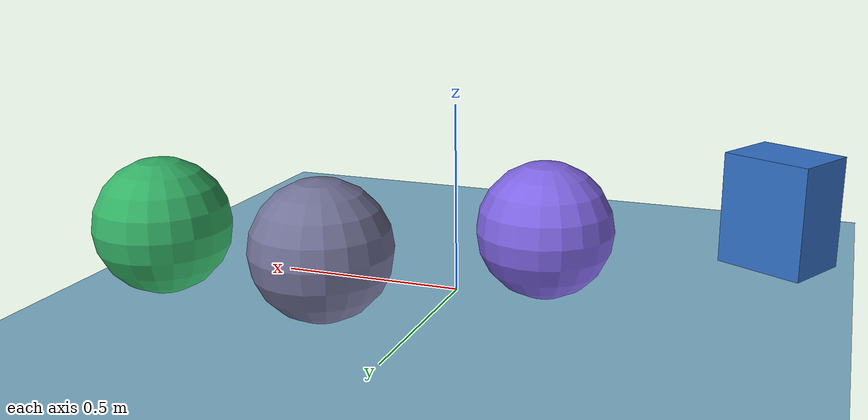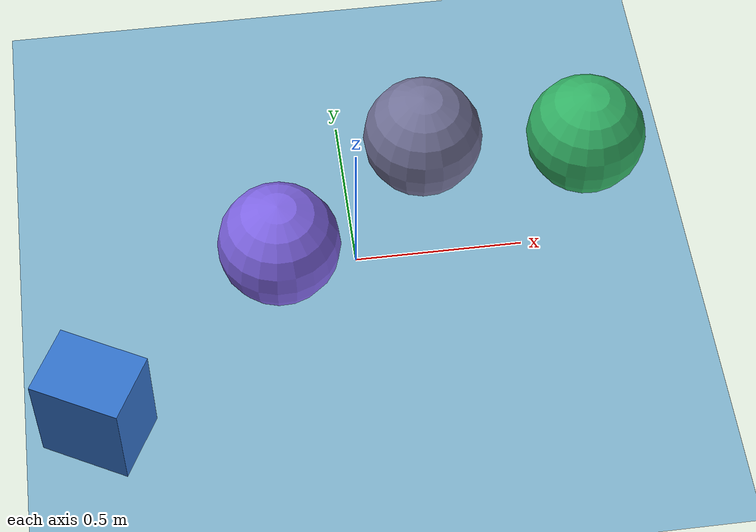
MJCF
<mujoco>
   <asset>
<texture type="skybox" builtin="gradient" rgb1="0.8 0.6 0.1" rgb2="0.8 0.5 0.1" width="500" height="500"/>
<texture name="checker_0" builtin="checker" rgb1="0.3 0.0 0.7" rgb2="0.6 0.9 0.5" width="500" height="500"/>
<texture name="gradient_1" builtin="gradient" rgb1="0.2 0.7 0.9" rgb2="0.8 0.1 0.9" width="500" height="500"/>
<texture name="gradient_2" builtin="gradient" rgb1="0.3 0.5 0.4" rgb2="0.1 0.9 0.4" width="500" height="500"/>
<texture name="gradient_3" builtin="gradient" rgb1="0.2 0.6 0.9" rgb2="0.2 0.3 0.7" width="500" height="500"/><material name="checker_0_mat" reflectance="0.16684049456139194" texrepeat="9 9" texture="checker_0" texuniform="false" />
<material name="gradient_1_mat" reflectance="0.14991018337636397" texture="gradient_1" texuniform="true"/>
<material name="gradient_2_mat" reflectance="0.34138567967675326" texture="gradient_2" texuniform="true"/>
<material name="gradient_3_mat" reflectance="0.45412367442460755" texture="gradient_3" texuniform="true"/>
   </asset>

   <worldbody>
     <geom type="plane" size="1 1 0.1" rgba="0.5 0.7 0.8 1" />
<light pos="0.10710673777341517 -0.5408899675209322 2" dir="0 0 -1" cutoff="90" diffuse="1 1 1" specular="1 1 1"/>
<geom type="sphere" pos="0.24 0.3 0.18" size="0.18 0.18 0.18" material="checker_0_mat" euler="0 0 84" />
<geom type="sphere" pos="-0.23 -0.04 0.18" size="0.18 0.18 0.18" material="gradient_1_mat" euler="0 0 83" />
<geom type="sphere" pos="0.73 0.25 0.18" size="0.18 0.18 0.18" material="gradient_2_mat" euler="0 0 60" />
<geom type="box" pos="-0.79 -0.5 0.16" size="0.1 0.13 0.16" material="gradient_3_mat" euler="0 0 62" /><camera euler="60 0 180" fovy="60" name="camera1" pos="-0.2 -1.5 1"></camera>   </worldbody>
   <visual>
      <headlight diffuse="0.7 0.7 0.7"/>
   </visual>
</mujoco>
